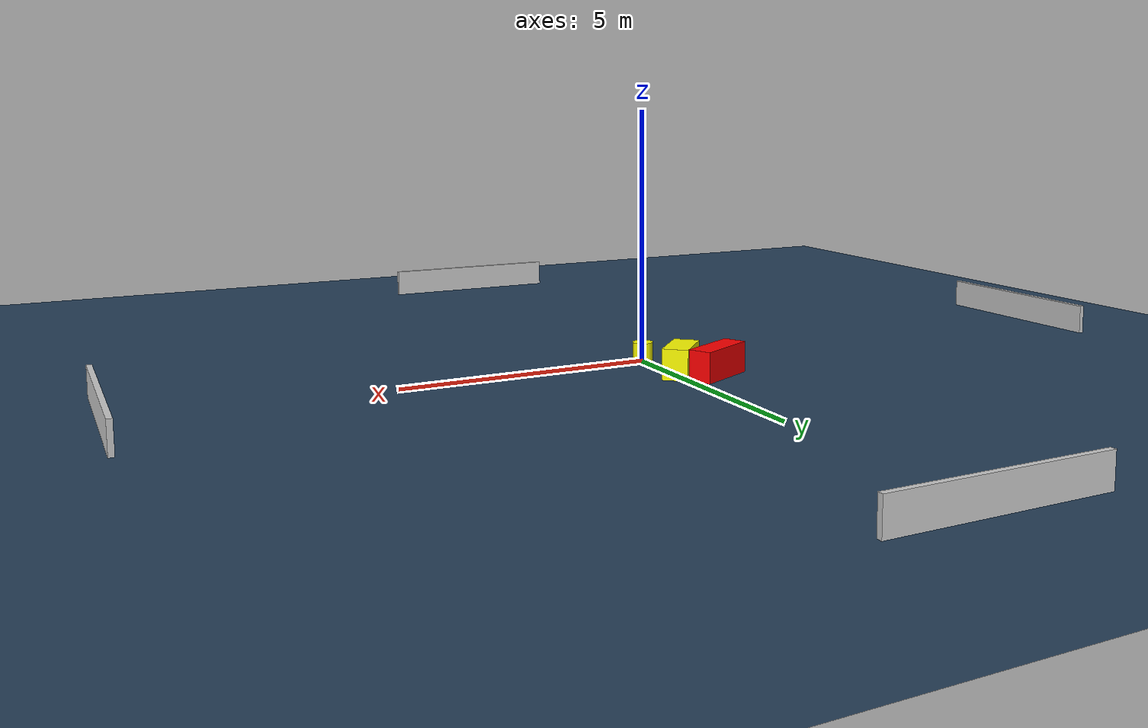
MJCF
<?xml version="1.0" ?>
<mujoco model="generated_environment">
  <option timestep="0.01" integrator="RK4" cone="elliptic"/>
  <default>
    <geom density="1"/>
  </default>
  <asset>
    <texture builtin="gradient" height="3072" name="skybox" rgb1="0.3 0.5 0.7" rgb2="0 0 0" type="skybox" width="512"/>
    <texture builtin="checker" height="300" name="groundplane" rgb1="0.2 0.3 0.4" rgb2="0.1 0.2 0.3" type="2d" width="300"/>
    <material name="groundplane" reflectance="0.2" texrepeat="5 5" texture="groundplane"/>
  </asset>
  <worldbody>
    <light dir="0 0 -1" directional="true" pos="0 0 1.5"/>
    <geom condim="3" friction="0.5 0.005 0.001" material="groundplane" name="floor" pos="0 0 0" size="0 0 0.05" type="plane"/>
    <body name="walls">
      <geom name="wall_1" condim="4" pos="-10.0 0.0 0.3" rgba="0.800000011920929 0.800000011920929 0.800000011920929 1.0" size="0.05 2.0 0.3" type="box"/>
      <geom name="wall_2" condim="4" pos="10.0 0.0 0.3" rgba="0.800000011920929 0.800000011920929 0.800000011920929 1.0" size="0.05 2.0 0.3" type="box"/>
      <geom name="wall_3" condim="4" pos="0.0 -10.0 0.3" rgba="0.800000011920929 0.800000011920929 0.800000011920929 1.0" size="2.0 0.05 0.3" type="box"/>
      <geom name="wall_4" condim="4" pos="0.0 10.0 0.3" rgba="0.800000011920929 0.800000011920929 0.800000011920929 1.0" size="2.0 0.05 0.3" type="box"/>
    </body>
    <body name="robot">
      <joint name="joint_x" type="slide" pos="0 0 0" axis="1 0 0"/>
      <joint name="joint_y" type="slide" pos="0 0 0" axis="0 1 0"/>
      <geom name="robot" type="cylinder" pos="0.0 0.0 0.2" size="0.2 0.2 0.0" mass="5.0" friction="1.0 0.005 0.0001" condim="4" rgba="1.0 1.0 0.0 1.0"/>
    </body>
    <body name="obstacle_1_movable">
      <geom name="obstacle_1_movable" condim="4" pos="-0.0959736070412237 1.3844634648955665 0.3" euler="0 0 226.94132076836587" friction="0.0 0.005 0.001" rgba="1.0 1.0 0.0 1.0" size="0.4773976986301139 0.2511493321113775 0.3" type="box" mass="0.1"/>
      <joint type="free"/>
    </body>
    <body name="obstacle_2_static">
      <geom name="obstacle_2_static" condim="4" pos="-0.6689671566922821 1.7788966777363588 0.3" euler="0 0 116.56252441705493" friction="0.0 0.005 0.001" rgba="1.0 0.0 0.0 1.0" size="0.22785860272830347 0.6276363448185156 0.3" type="box"/>
    </body>
  </worldbody>
  <actuator>
    <motor name="actuator_x" joint="joint_x" gear="1" ctrlrange="-1 1"/>
    <motor name="actuator_y" joint="joint_y" gear="1" ctrlrange="-1 1"/>
  </actuator>
</mujoco>
